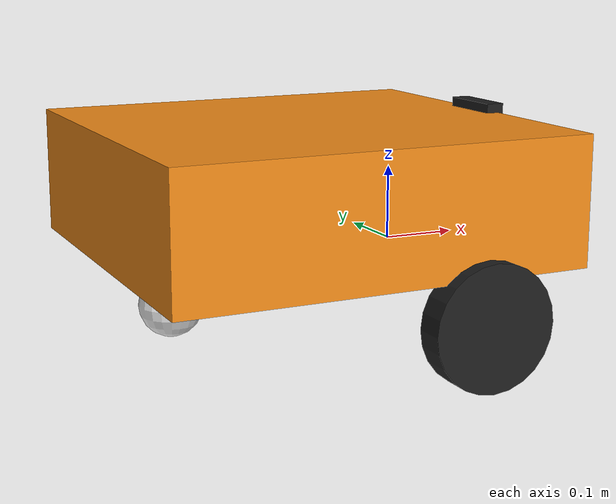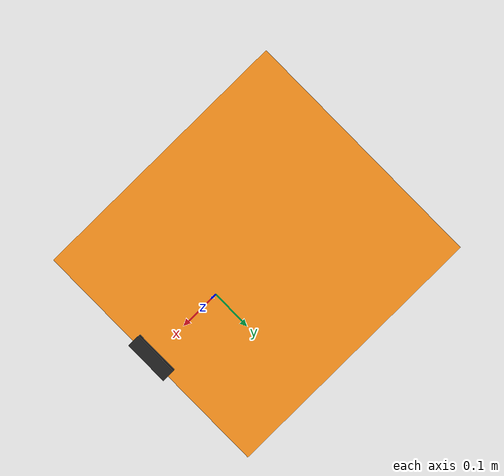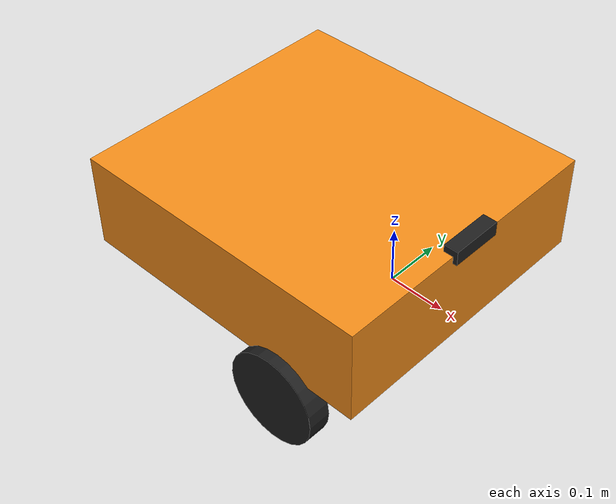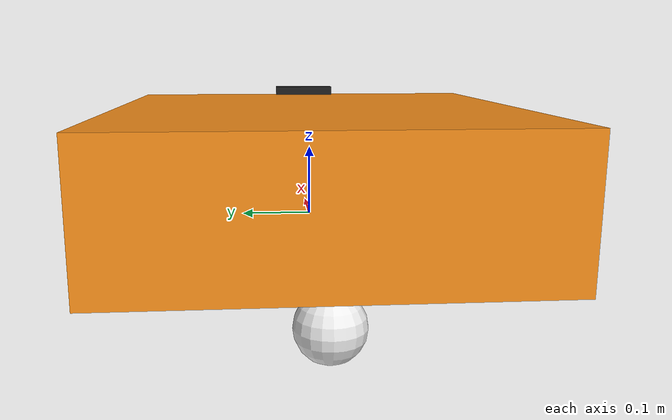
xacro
<?xml version="1.0"?>
<!-- Basic differential drive mobile base -->
<robot xmlns:xacro="http://www.ros.org/wiki/xacro" name="iirbot">
  <xacro:arg name="prefix" default="" />
  <xacro:arg name="use_mock_hardware" default="false" />
  <xacro:arg name="is_on_wall" default="false" />
  <xacro:include filename="$(find iir_base)/urdf/iir_description.urdf.xacro" />

  <!-- Import Rviz colors -->
  <xacro:include filename="$(find iir_base)/urdf/iir.materials.xacro" />
  <xacro:include filename="$(find iir_base)/urdf/hokuyo_ust10.urdf.xacro"  />

  <!-- Import diffbot ros2_control description -->
  <xacro:include filename="$(find iir_base)/urdf/iirbot.ros2_control.xacro" />

  <xacro:iirbot_desc prefix="$(arg prefix)" is_on_wall="$(arg is_on_wall)" />
  <xacro:hokuyo_ust10_mount prefix="" topic="scan" parent_link="base_link" min_angle="-2.35619" max_angle="2.35619">
  <origin xyz="0 0 0.1" rpy="0 0 0" />
  </xacro:hokuyo_ust10_mount>

  <xacro:iirbot_ros2_control
    name="IirBot" prefix="$(arg prefix)" use_mock_hardware="$(arg use_mock_hardware)"/>

</robot>

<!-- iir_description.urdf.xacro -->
<robot xmlns:xacro="http://www.ros.org/wiki/xacro">

  <xacro:macro name="iirbot_desc" params="prefix is_on_wall">

  <!-- Constants for robot dimensions -->
  <xacro:property name="PI" value="3.1415926535897931"/>
  <xacro:property name="base_mass" value="0.3" /> <!-- arbitrary value for base mass -->
  <xacro:property name="base_width" value=".55" />
  <xacro:property name="base_length" value=".51" />
  <xacro:property name="base_height" value="0.17" />
  <xacro:property name="wheel_mass" value="0.3" /> <!-- arbitrary value for wheel mass -->
  <xacro:property name="wheel_len" value="0.040" />
  <!-- wheels are .5m apart -->
  <xacro:property name="wheel_radius" value="0.0825" />
  <xacro:property name="caster_wheel_mass" value="0.1" /> <!-- arbitrary value for caster wheel mass -->
  <xacro:property name="caster_wheel_radius" value="0.042" />
  <xacro:property name="z_offset" value="-${base_height/3}" /> <!-- Space btw top of beam and the each joint -->

  <!-- Base Link -->
  <link name="base_link">
  <origin xyz="-0.13 0 0"/>
    <collision>
      <origin xyz="-.13 0 ${base_height/2}" rpy="0 0 0"/>
      <geometry>
        <box size="${base_width} ${base_length} ${base_height}"/>
      </geometry>
    </collision>

    <visual>
      <origin xyz="-.13 0 ${base_height/2}" rpy="0 0 0"/>
      <geometry>
        <box size="${base_width} ${base_length} ${base_height}"/>
      </geometry>
      <material name="orange"/>
    </visual>

    <inertial>
      <origin xyz="0 0 0" rpy="0 0 0"/>
      <mass value="${base_mass}"/>
      <inertia
        ixx="${base_mass / 12.0 * (base_length*base_length + base_height*base_height)}" ixy="0.0" ixz="0.0"
        iyy="${base_mass / 12.0 * (base_height*base_height + base_width*base_width)}" iyz="0.0"
        izz="${base_mass / 12.0 * (base_width*base_width + base_length*base_length)}"/>
      </inertial>
    </link>
  <gazebo reference="base_link">
  </gazebo>
    <joint name="left_wheel_joint" type="continuous">
      <parent link="base_link"/>
      <child link="left_wheel"/>
      <origin xyz="0 .254 ${z_offset}" rpy="0 0 0"/>
      <axis xyz="0 1 0"/>
      <dynamics damping="0.2"/>
      <limit effort="100" velocity="10.0"/>
    </joint>

    <!-- left wheel Link -->
    <link name="left_wheel">
      <collision>
        <origin xyz="0 0 0" rpy="${PI/2} 0 0"/>
        <geometry>
          <cylinder length="${wheel_len}" radius="${wheel_radius}"/>
        </geometry>
      </collision>

      <visual>
        <origin xyz="0 0 0" rpy="${PI/2} 0 0"/>
        <geometry>
          <cylinder length="${wheel_len}" radius="${wheel_radius}"/>
        </geometry>
        <material name="black"/>
      </visual>

      <inertial>
        <origin xyz="0 0 0" rpy="${PI/2} 0 0"/>
        <mass value="${wheel_mass}"/>
        <inertia
          ixx="${wheel_mass / 12.0 * (3*wheel_radius*wheel_radius + wheel_len*wheel_len)}" ixy="0.0" ixz="0.0"
          iyy="${wheel_mass / 12.0 * (3*wheel_radius*wheel_radius + wheel_len*wheel_len)}" iyz="0.0"
          izz="${wheel_mass / 2.0 * wheel_radius*wheel_radius}"/>
        </inertial>
      </link>

 <!-- IMU Link -->
<!-- in the future, we could look into changing these joint types to resolute or floating, and update the imu's rotation based off of its quaternion output -->
<!-- This may allow for better modeling of the robots behaviour in 3D space. -->
    <joint name="imu_joint_0" type="fixed">
      <parent link="base_link"/>
      <child link="imu_link_0"/>
        <xacro:if value="${is_on_wall}">
          <origin xyz="-0.35 .20 ${base_height}" rpy="${PI/2} 0 ${PI/2}"/>
        </xacro:if>
        <xacro:unless value="${is_on_wall}">
        <origin xyz="-0.35 -.20 ${base_height}" rpy="0 0 ${PI/2}"/>
        </xacro:unless>
    </joint>

    <link name="imu_link_0">
      <inertial>
        <xacro:if value="${is_on_wall}">
          <origin xyz="0 0 0" rpy="${PI/2} 0 ${PI/2}"/>
        </xacro:if>
        <xacro:unless value="${is_on_wall}">
          <origin xyz="0 0 0" rpy="0 0 ${PI/2}"/>
        </xacro:unless>
        <mass value="0.01"/>
        <inertia
          ixx="0.0001" ixy="0.0" ixz="0.0"
          iyy="0.0001" iyz="0.0"
          izz="0.0001"/>
      </inertial>
    </link>
 <!-- IMU Link -->
  <joint name="imu_joint_1" type="fixed">
    <parent link="base_link"/>
    <child link="imu_link_1"/>
    <xacro:if value="${is_on_wall}">
      <origin xyz="-0.35 -.20 ${base_height}" rpy="${PI/2} 0 ${PI/2}"/>
    </xacro:if>
    <xacro:unless value="${is_on_wall}">
    <origin xyz="-0.35 .20 ${base_height}" rpy="0 0 ${PI/2}"/>
    </xacro:unless>
  </joint>

    <link name="imu_link_1">
      <inertial>
        <xacro:if value="${is_on_wall}">
          <origin xyz="0 0 0" rpy="${PI/2} 0 ${PI/2}"/>
        </xacro:if>
        <xacro:unless value="${is_on_wall}">
          <origin xyz="0 0 0" rpy="0 0 ${PI/2}"/>
        </xacro:unless>
        <mass value="0.01"/>
        <inertia
          ixx="0.0001" ixy="0.0" ixz="0.0"
          iyy="0.0001" iyz="0.0"
          izz="0.0001"/>
      </inertial>
    </link>

    <gazebo reference="left_wheel">
      <mu1>1.0</mu1>
      <mu2>1.0</mu2>

      <kp>1000000.0</kp>
      <kd>1.0</kd>
      <minDepth>0.0001</minDepth>
      <maxVel>10.0</maxVel>
      <fdir1 value="0 1 0"/>
      <material>Gazebo/DarkGrey</material>
    </gazebo>

    <joint name="right_wheel_joint" type="continuous">
      <parent link="base_link"/>
      <child link="right_wheel"/>
      <origin xyz="0 -.254 ${z_offset}" rpy="0 0 0"/>
      <axis xyz="0 1 0"/>
      <dynamics damping="0.2"/>
      <limit effort="100" velocity="10.0"/>
    </joint>

    <!-- right wheel Link -->
    <link name="right_wheel">
      <collision>
        <origin xyz="0 0 0" rpy="${PI/2} 0 0"/>
        <geometry>
          <cylinder length="${wheel_len}" radius="${wheel_radius}"/>
        </geometry>
      </collision>

      <visual>
        <origin xyz="0 0 0" rpy="${PI/2} 0 0"/>
        <geometry>
          <cylinder length="${wheel_len}" radius="${wheel_radius}"/>
        </geometry>
        <material name="black"/>
      </visual>

      <inertial>
        <origin xyz="0 0 0" rpy="${PI/2} 0 0"/>
        <mass value="${wheel_mass}"/>
        <inertia
          ixx="${wheel_mass / 12.0 * (3*wheel_radius*wheel_radius + wheel_len*wheel_len)}" ixy="0.0" ixz="0.0"
          iyy="${wheel_mass / 12.0 * (3*wheel_radius*wheel_radius + wheel_len*wheel_len)}" iyz="0.0"
          izz="${wheel_mass / 2.0 * wheel_radius*wheel_radius}"/>
        </inertial>
      </link>
    <gazebo reference="right_wheel">
      <mu1>1.0</mu1>
      <mu2>1.0</mu2>
      <kp>1000000.0</kp>
      <kd>1.0</kd>
      <minDepth>0.0001</minDepth>
      <maxVel>10.0</maxVel>
      <fdir1 value="0 1 0"/>
      <material>Gazebo/DarkGrey</material>
    </gazebo>

<transmission name="right_wheel_trans">
  <type>transmission_interface/SimpleTransmission</type>
  <actuator name="right_motor">
    <mechanicalReduction>11.111</mechanicalReduction>
  </actuator>
  <joint name="right_wheel_joint">
    <hardwareInterface>hardware_interface/VelocityJointInterface</hardwareInterface>
  </joint>
</transmission>

    <joint name="caster_rear_wheel_joint" type="fixed">
      <parent link="base_link"/>
      <child link="caster_rear_wheel"/>
      <origin xyz="-${base_width/2 + caster_wheel_radius} 0 ${z_offset}" rpy="0 0 0"/>
    </joint>

    <!-- caster rear wheel Link -->
    <link name="caster_rear_wheel">
      <collision>
        <origin xyz="0 0 0" rpy="0 0 0"/>
        <geometry>
          <sphere radius="${caster_wheel_radius}"/>
        </geometry>
      </collision>

      <visual>
        <origin xyz="0 0 0" rpy="0 0 0"/>
        <geometry>
          <sphere radius="${caster_wheel_radius}"/>
        </geometry>
        <material name="white"/>
      </visual>

      <inertial>
        <origin xyz="0 0 0" rpy="0 0 0"/>
        <mass value="${caster_wheel_mass}"/>
        <inertia
          ixx="${caster_wheel_mass * 0.4 * (caster_wheel_radius * caster_wheel_radius)}" ixy="0.0" ixz="0.0"
          iyy="${caster_wheel_mass * 0.4 * (caster_wheel_radius * caster_wheel_radius)}" iyz="0.0"
          izz="${caster_wheel_mass * 0.4 * (caster_wheel_radius * caster_wheel_radius)}"/>
        </inertial>
      </link>

    <!-- Depth Camera Link -->
    <joint name="depth_camera_joint" type="fixed">
      <parent link="base_link"/>
      <child link="depth_camera_link"/>
      <origin xyz="0.14 0 ${base_height}" rpy="0 0 0"/>
    </joint>

    <link name="depth_camera_link">
      <visual>
        <origin xyz="0 0 0" rpy="0 0 0"/>
        <geometry>
          <box size="0.025 0.09 0.025"/>
        </geometry>
        <material name="black"/>
      </visual>

      <collision>
        <origin xyz="0 0 0" rpy="0 0 0"/>
        <geometry>
          <box size="0.025 0.09 0.025"/>
        </geometry>
      </collision>

      <inertial>
        <origin xyz="0 0 0" rpy="0 0 0"/>
        <mass value="0.05"/>
        <inertia
          ixx="0.0001" ixy="0.0" ixz="0.0"
          iyy="0.0001" iyz="0.0"
          izz="0.0001"/>
      </inertial>
    </link>

    <!-- Depth Camera Optical Frame (ROS convention: z forward, x right, y down) -->
    <joint name="depth_camera_optical_joint" type="fixed">
      <parent link="depth_camera_link"/>
      <child link="depth_camera_optical_frame"/>
      <origin xyz="0 0 0" rpy="${-PI/2} 0 ${-PI/2}"/>
    </joint>

    <link name="depth_camera_optical_frame"/>

  </xacro:macro>
</robot>

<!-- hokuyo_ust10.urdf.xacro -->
<robot name="hokuyo"  xmlns:xacro="http://ros.org/wiki/xacro">

  <xacro:macro name="hokuyo_ust10_mount" params="prefix topic parent_link min_angle:=-2.35619 max_angle:=2.35619 *origin">

    <xacro:macro name="hokuyo_ust10" params="frame:=laser topic:=scan sample_size:=720 update_rate:=50
               min_angle:=${min_angle} max_angle:=${max_angle} min_range:=0.1 max_range:=30.0 robot_namespace:=/">
      <link name="${frame}">
        <inertial>
          <mass value="1.1" />
          <origin xyz="0 0 0" />
          <inertia ixx="${0.0833333 * 1.1 * (0.102*0.102 + 0.152*0.152)}" ixy="0.0" ixz="0.0"
            iyy="${0.0833333 * 1.1 * (0.105*0.105 + 0.152*0.152)}" iyz="0.0"
            izz="${0.0833333 * 1.1 * (0.105*0.105 + 0.102*0.102)}" />
        </inertial>
      </link>

      <gazebo reference="${frame}">
        <turnGravityOff>true</turnGravityOff>
        <sensor type="ray" name="${frame}">
          <pose>0 0 0 0 0 0</pose>
          <visualize>false</visualize>
          <update_rate>${update_rate}</update_rate>
          <ray>
            <scan>
              <horizontal>
                <samples>${sample_size}</samples>
                <resolution>1</resolution>
                <min_angle>${min_angle}</min_angle>
                <max_angle>${max_angle}</max_angle>
              </horizontal>
            </scan>
            <range>
              <min>${min_range}</min>
              <max>${max_range}</max>
              <resolution>0.01</resolution>
            </range>
            <noise>
              <type>gaussian</type>
              <mean>0.0</mean>
              <stddev>0.001</stddev>
            </noise>
          </ray>
          <plugin name="gazebo_ros_laser" filename="libgazebo_ros_ray_sensor.so">
            <ros>
              <namespace>${robot_namespace}</namespace>
              <remapping>~/out:=${topic}</remapping>
            </ros>
            <output_type>sensor_msgs/LaserScan</output_type>
            <frame_name>${frame}</frame_name>
          </plugin>
        </sensor>
      </gazebo>
    </xacro:macro>

    <xacro:hokuyo_ust10 frame="laser" topic="${topic}"/>

    <joint name="laser_joint" type="fixed">
      <!-- This offset is from the base of the bracket to the LIDAR's focal point. -->
      <origin xyz="0 0 0.0474" rpy="0 0 0" />
      <parent link="base_link" />
      <child link="laser" />
    </joint>

    <gazebo reference="laser_mount">
    </gazebo>

  </xacro:macro>

</robot>
